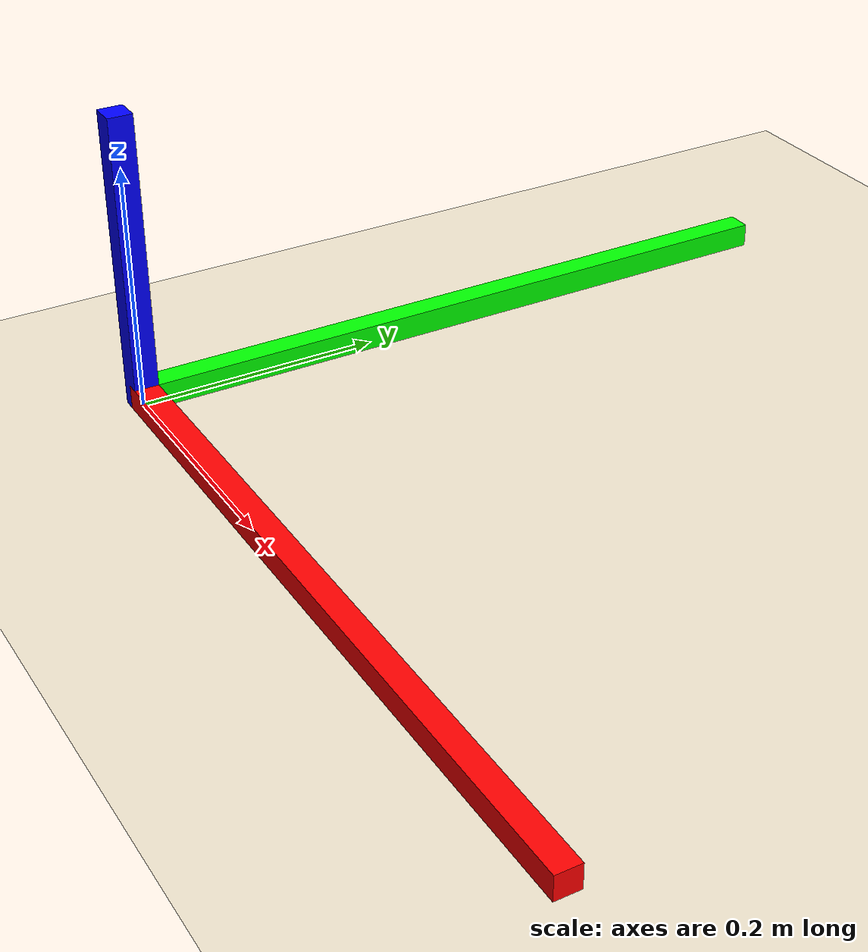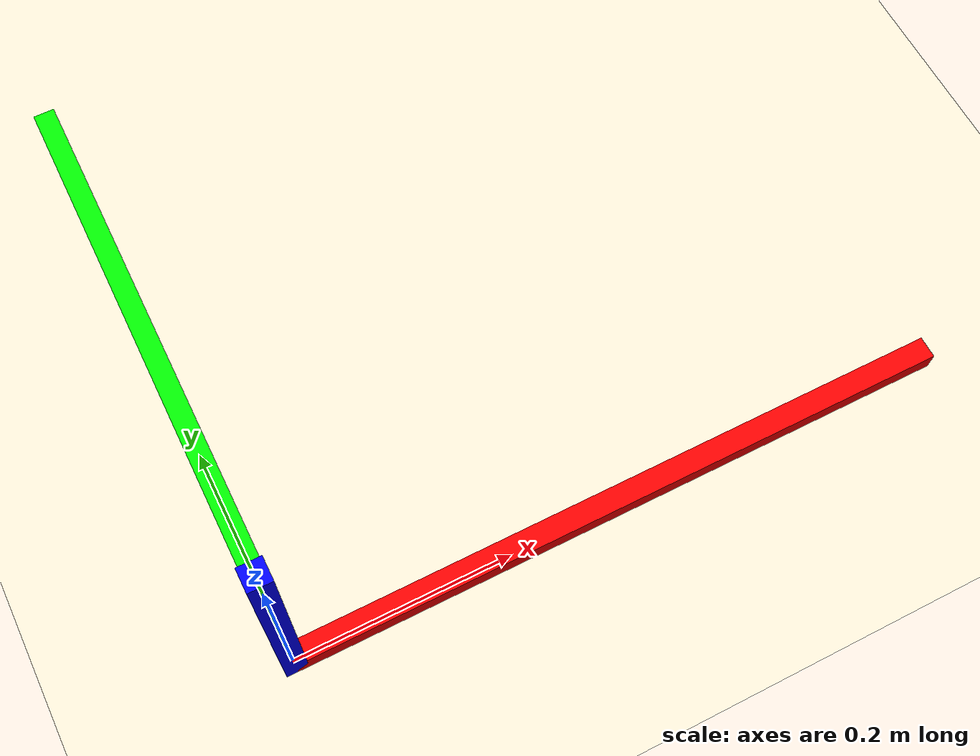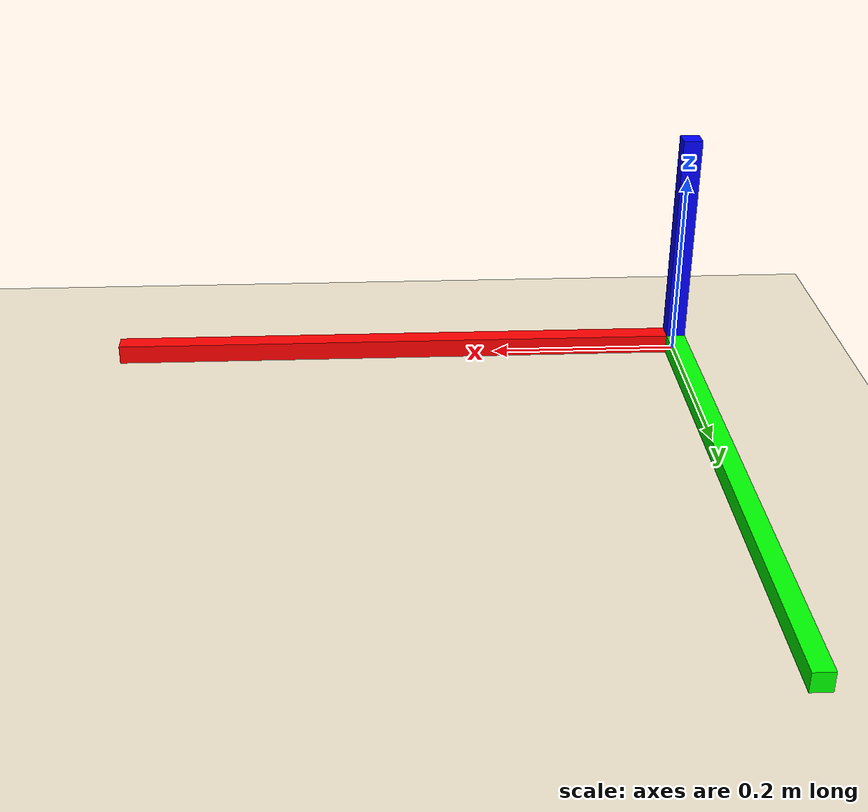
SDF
<?xml version="1.0"?>

<sdf version="1.7">
    <world name="empty">
        <physics name='10ms' type='ignored'>
            <max_step_size>0.01</max_step_size>
            <real_time_factor>1</real_time_factor>
            <real_time_update_rate>100</real_time_update_rate>
        </physics>
        <plugin name='ignition::gazebo::systems::Physics'
            filename='ignition-gazebo-physics-system' />
        <plugin name='ignition::gazebo::systems::UserCommands'
            filename='ignition-gazebo-user-commands-system' />
        <plugin name='ignition::gazebo::systems::SceneBroadcaster'
            filename='ignition-gazebo-scene-broadcaster-system' />
        <plugin filename="libignition-gazebo-sensors-system.so"
            name="ignition::gazebo::systems::Sensors">
            <render_engine>ogre2</render_engine>
        </plugin>
        <plugin filename="libignition-gazebo-contact-system.so"
            name="ignition::gazebo::systems::Contact">
        </plugin>

        <scene>
            <ambient>1.0 1.0 1.0</ambient>
            <background>0.8 0.8 0.8</background>
        </scene>

        <light type="directional" name="sun">
            <cast_shadows>true</cast_shadows>
            <pose>0 0 10 0 0 0</pose>
            <diffuse>0.8 0.8 0.8 1</diffuse>
            <specular>0.2 0.2 0.2 1</specular>
            <attenuation>
                <range>1000</range>
                <constant>0.9</constant>
                <linear>0.01</linear>
                <quadratic>0.001</quadratic>
            </attenuation>
            <direction>-0.5 0.1 -0.9</direction>
        </light>

        <model name="ground_plane">
            <static>true</static>
            <link name="link">
                <collision name="collision">
                    <geometry>
                        <plane>
                            <normal>0 0 1</normal>
                            <size>100 100</size>
                        </plane>
                    </geometry>
                </collision>
                <visual name="visual">
                    <geometry>
                        <plane>
                            <normal>0 0 1</normal>
                            <size>100 100</size>
                        </plane>
                    </geometry>
                    <material>
                        <ambient>0.94 0.90 0.81 1</ambient>
                        <diffuse>0.94 0.90 0.81 1</diffuse>
                        <specular>1 1 1 0</specular>
                    </material>
                </visual>
            </link>
        </model>

        <!-- === Scout Mini size rulers (0.612, 0.580, 0.245 m) === -->
        <model name="scout_rulers">
          <static>true</static>
          <!-- world 원점 근처에 둠 -->
          <pose>0 0 0 0 0 0</pose>
          <link name="ruler_link">

            <!-- 0.612 m 자 (X 방향, 빨간색) -->
            <collision name="ruler_x_collision">
              <!-- 길이 0.612, 중심을 x=0.306 에 둠 -->
              <pose>0.306 0 0.01 0 0 0</pose>
              <geometry>
                <box>
                  <size>0.612 0.02 0.02</size>
                </box>
              </geometry>
            </collision>
            <visual name="ruler_x_visual">
              <pose>0.306 0 0.01 0 0 0</pose>
              <geometry>
                <box>
                  <size>0.612 0.02 0.02</size>
                </box>
              </geometry>
              <material>
                <ambient>1 0 0 1</ambient>
                <diffuse>1 0 0 1</diffuse>
              </material>
            </visual>

            <!-- 0.580 m 자 (Y 방향, 초록색) -->
            <collision name="ruler_y_collision">
              <!-- 길이 0.580, 중심을 y=0.29 에 둠 -->
              <pose>0 0.29 0.01 0 0 0</pose>
              <geometry>
                <box>
                  <size>0.02 0.580 0.02</size>
                </box>
              </geometry>
            </collision>
            <visual name="ruler_y_visual">
              <pose>0 0.29 0.01 0 0 0</pose>
              <geometry>
                <box>
                  <size>0.02 0.580 0.02</size>
                </box>
              </geometry>
              <material>
                <ambient>0 1 0 1</ambient>
                <diffuse>0 1 0 1</diffuse>
              </material>
            </visual>

            <!-- 0.245 m 자 (Z 방향으로 세워진 자, 파란색) -->
            <collision name="ruler_z_collision">
              <!-- 높이 0.245, 바닥(0)~0.245 까지 세움: 중심 z=0.1225 -->
              <pose>0 0 0.1225 0 0 0</pose>
              <geometry>
                <box>
                  <size>0.02 0.02 0.245</size>
                </box>
              </geometry>
            </collision>
            <visual name="ruler_z_visual">
              <pose>0 0 0.1225 0 0 0</pose>
              <geometry>
                <box>
                  <size>0.02 0.02 0.245</size>
                </box>
              </geometry>
              <material>
                <ambient>0 0 1 1</ambient>
                <diffuse>0 0 1 1</diffuse>
              </material>
            </visual>

          </link>
        </model>
        <!-- === 자 모델 끝 === -->
    </world>
</sdf>
